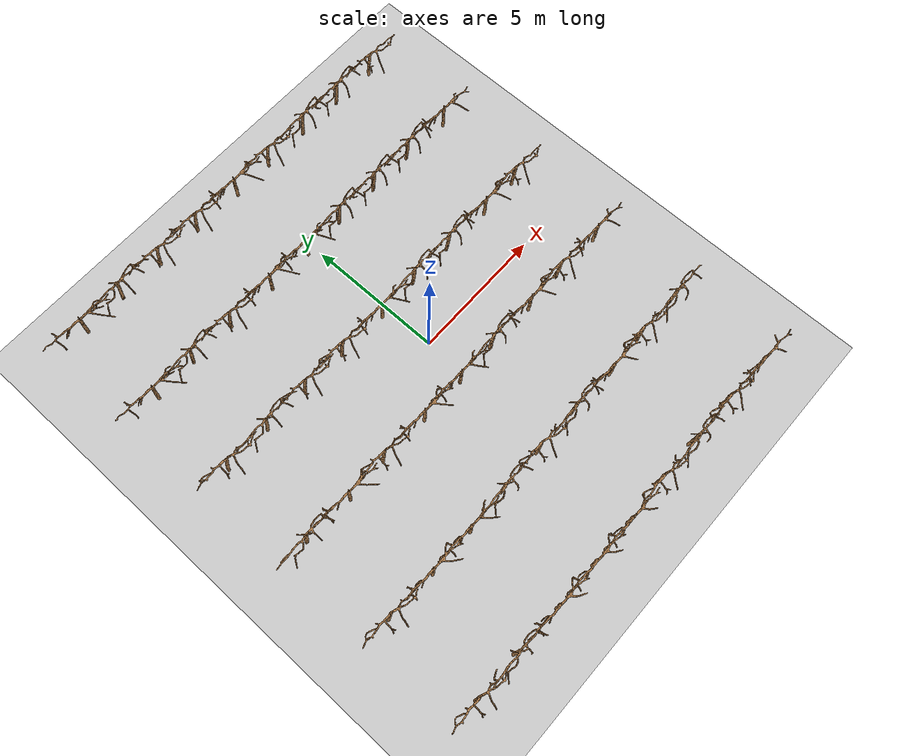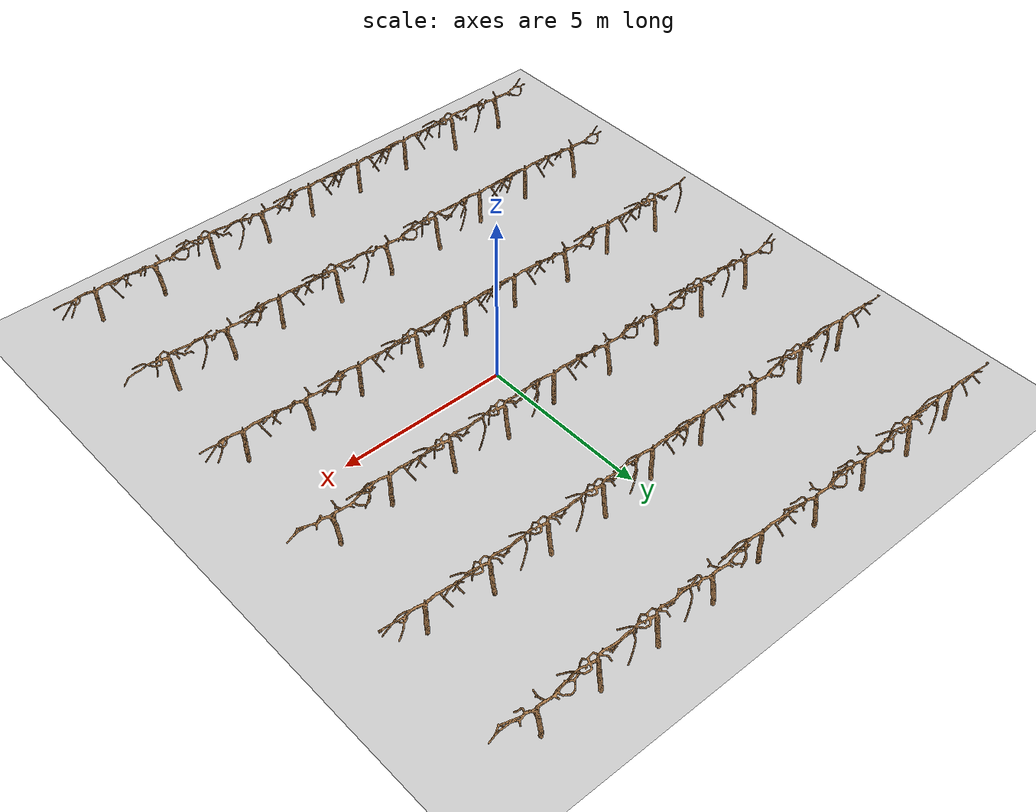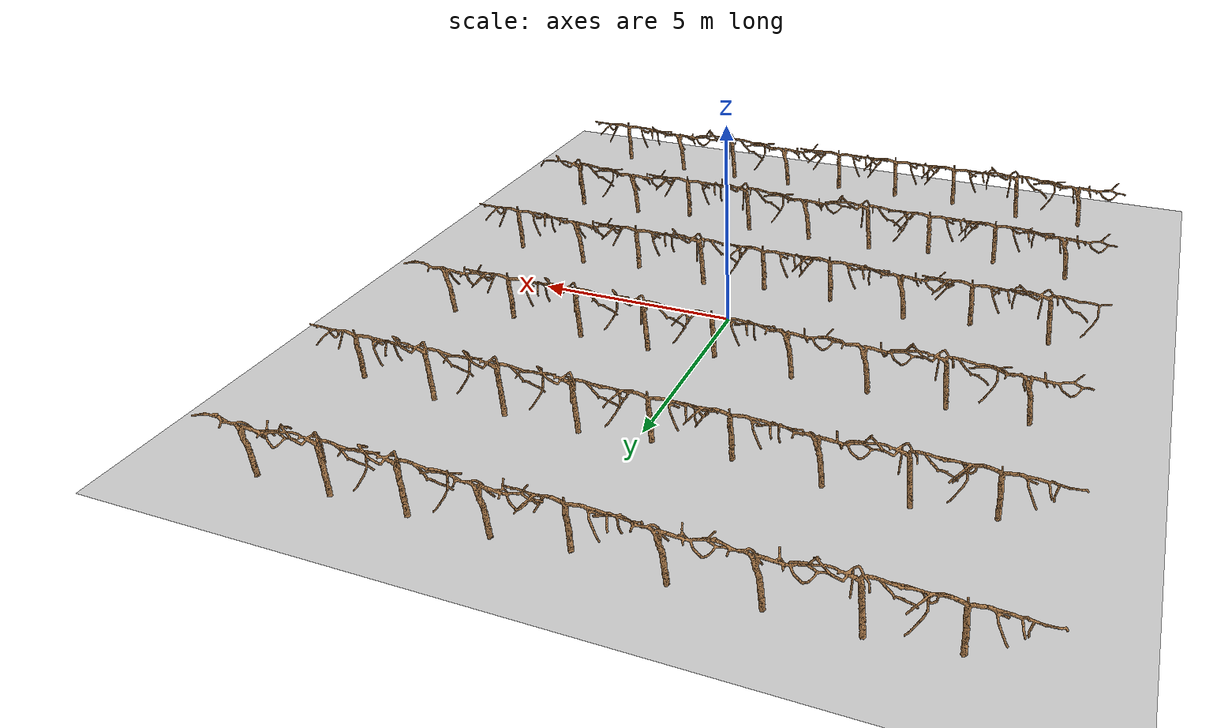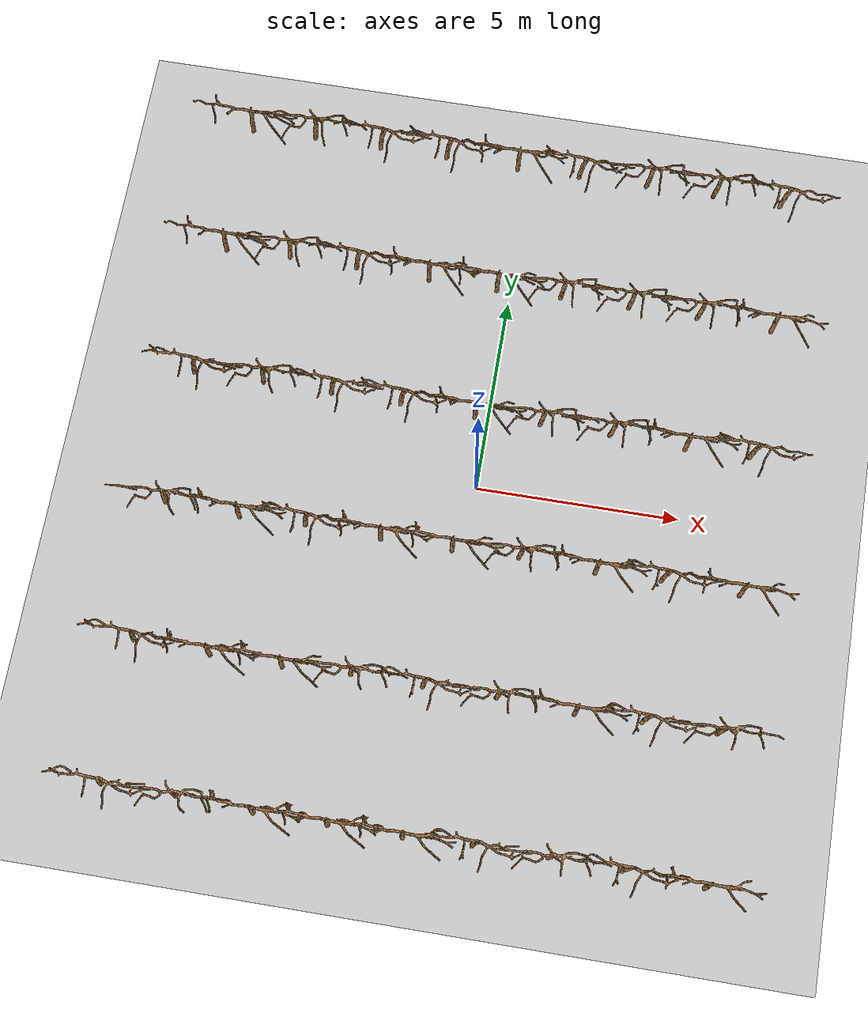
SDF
<sdf version="1.6">
 <world name="default">
  <light name="sun" type="directional">
   <pose>0 0 10 0 -0 0</pose>
   <diffuse>0.8 0.8 0.8 1</diffuse>
   <specular>0.2 0.2 0.2 1</specular>
   <attenuation>
    <range>1000</range>
    <constant>0.9</constant>
    <linear>0.01</linear>
    <quadratic>0.001</quadratic>
   </attenuation>
   <direction>-0.5 0.1 -0.9</direction>
  </light>
  <model name="ground_plane">
   <static>1</static>
   <link name="link">
    <collision name="collision">
     <geometry><plane><normal>0 0 1</normal><size>100 100</size></plane></geometry>
     <surface>
      <contact><collide_bitmask>65535</collide_bitmask></contact>
      <friction><ode><mu>100</mu><mu2>50</mu2></ode></friction>
     </surface>
    </collision>
    <visual name="visual">
     <cast_shadows>0</cast_shadows>
     <geometry><plane><normal>0 0 1</normal><size>100 100</size></plane></geometry>
     <material>
      <script><uri>file://media/materials/scripts/gazebo.material</uri><name>Gazebo/Grey</name></script>
     </material>
    </visual>
   </link>
  </model>
  <gravity>0 0 -9.8</gravity>
  <magnetic_field>6e-06 2.3e-05 -4.2e-05</magnetic_field>
  <atmosphere type="adiabatic"/>
  <physics name="default_physics" default="0" type="ode">
   <max_step_size>0.001</max_step_size>
   <real_time_factor>1</real_time_factor>
   <real_time_update_rate>1000</real_time_update_rate>
  </physics>
  <scene><ambient>0.4 0.4 0.4 1</ambient><background>0.7 0.7 0.7 1</background><shadows>1</shadows></scene>
  <audio><device>default</device></audio>
  <spherical_coordinates>
   <surface_model>EARTH_WGS84</surface_model>
   <latitude_deg>0</latitude_deg>
   <longitude_deg>0</longitude_deg>
   <elevation>0</elevation>
   <heading_deg>0</heading_deg>
  </spherical_coordinates>
  <model name="1_1">
   <static>1</static>
   <link name="link">
    <collision name="collision">
     <geometry>
      <mesh><uri>model://Vine3/meshes/mega_cloud7_processed.stl</uri><scale>1 1 1</scale></mesh>
     </geometry>
     <surface><friction><ode><mu>100</mu><mu2>50</mu2></ode></friction></surface>
    </collision>
    <visual name="visual">
     <geometry>
      <mesh><uri>model://Vine3/meshes/mega_cloud7_processed.stl</uri><scale>1 1 1</scale></mesh>
     </geometry>
     <material>
      <script><uri>file://media/materials/scripts/gazebo.material</uri><name>Gazebo/Wood</name></script>
     </material>
    </visual>
   </link>
   <pose>-7.50000 -9.75000 0.65000 0 0 1.57080</pose>
  </model>
  <model name="1_2">
   <static>1</static>
   <link name="link">
    <collision name="collision">
     <geometry>
      <mesh><uri>model://Vine1/meshes/mega_cloud3_processed.stl</uri><scale>1 1 1</scale></mesh>
     </geometry>
     <surface><friction><ode><mu>100</mu><mu2>50</mu2></ode></friction></surface>
    </collision>
    <visual name="visual">
     <geometry>
      <mesh><uri>model://Vine1/meshes/mega_cloud3_processed.stl</uri><scale>1 1 1</scale></mesh>
     </geometry>
     <material>
      <script><uri>file://media/materials/scripts/gazebo.material</uri><name>Gazebo/Wood</name></script>
     </material>
    </visual>
   </link>
   <pose>-5.74000 -9.75000 0.65000 0 0 1.57080</pose>
  </model>
  <model name="1_3">
   <static>1</static>
   <link name="link">
    <collision name="collision">
     <geometry>
      <mesh><uri>model://Vine2/meshes/mega_cloud16_processed.stl</uri><scale>1 1 1</scale></mesh>
     </geometry>
     <surface><friction><ode><mu>100</mu><mu2>50</mu2></ode></friction></surface>
    </collision>
    <visual name="visual">
     <geometry>
      <mesh><uri>model://Vine2/meshes/mega_cloud16_processed.stl</uri><scale>1 1 1</scale></mesh>
     </geometry>
     <material>
      <script><uri>file://media/materials/scripts/gazebo.material</uri><name>Gazebo/Wood</name></script>
     </material>
    </visual>
   </link>
   <pose>-3.98000 -9.75000 0.65000 0 0 1.57080</pose>
  </model>
  <model name="1_4">
   <static>1</static>
   <link name="link">
    <collision name="collision">
     <geometry>
      <mesh><uri>model://Vine2/meshes/mega_cloud16_processed.stl</uri><scale>1 1 1</scale></mesh>
     </geometry>
     <surface><friction><ode><mu>100</mu><mu2>50</mu2></ode></friction></surface>
    </collision>
    <visual name="visual">
     <geometry>
      <mesh><uri>model://Vine2/meshes/mega_cloud16_processed.stl</uri><scale>1 1 1</scale></mesh>
     </geometry>
     <material>
      <script><uri>file://media/materials/scripts/gazebo.material</uri><name>Gazebo/Wood</name></script>
     </material>
    </visual>
   </link>
   <pose>-2.22000 -9.75000 0.65000 0 0 1.57080</pose>
  </model>
  <model name="1_5">
   <static>1</static>
   <link name="link">
    <collision name="collision">
     <geometry>
      <mesh><uri>model://Vine2/meshes/mega_cloud16_processed.stl</uri><scale>1 1 1</scale></mesh>
     </geometry>
     <surface><friction><ode><mu>100</mu><mu2>50</mu2></ode></friction></surface>
    </collision>
    <visual name="visual">
     <geometry>
      <mesh><uri>model://Vine2/meshes/mega_cloud16_processed.stl</uri><scale>1 1 1</scale></mesh>
     </geometry>
     <material>
      <script><uri>file://media/materials/scripts/gazebo.material</uri><name>Gazebo/Wood</name></script>
     </material>
    </visual>
   </link>
   <pose>-0.46000 -9.75000 0.65000 0 0 1.57080</pose>
  </model>
  <model name="1_6">
   <static>1</static>
   <link name="link">
    <collision name="collision">
     <geometry>
      <mesh><uri>model://Vine3/meshes/mega_cloud7_processed.stl</uri><scale>1 1 1</scale></mesh>
     </geometry>
     <surface><friction><ode><mu>100</mu><mu2>50</mu2></ode></friction></surface>
    </collision>
    <visual name="visual">
     <geometry>
      <mesh><uri>model://Vine3/meshes/mega_cloud7_processed.stl</uri><scale>1 1 1</scale></mesh>
     </geometry>
     <material>
      <script><uri>file://media/materials/scripts/gazebo.material</uri><name>Gazebo/Wood</name></script>
     </material>
    </visual>
   </link>
   <pose>1.30000 -9.75000 0.65000 0 0 1.57080</pose>
  </model>
  <model name="1_7">
   <static>1</static>
   <link name="link">
    <collision name="collision">
     <geometry>
      <mesh><uri>model://Vine1/meshes/mega_cloud3_processed.stl</uri><scale>1 1 1</scale></mesh>
     </geometry>
     <surface><friction><ode><mu>100</mu><mu2>50</mu2></ode></friction></surface>
    </collision>
    <visual name="visual">
     <geometry>
      <mesh><uri>model://Vine1/meshes/mega_cloud3_processed.stl</uri><scale>1 1 1</scale></mesh>
     </geometry>
     <material>
      <script><uri>file://media/materials/scripts/gazebo.material</uri><name>Gazebo/Wood</name></script>
     </material>
    </visual>
   </link>
   <pose>3.06000 -9.75000 0.65000 0 0 1.57080</pose>
  </model>
  <model name="1_8">
   <static>1</static>
   <link name="link">
    <collision name="collision">
     <geometry>
      <mesh><uri>model://Vine3/meshes/mega_cloud7_processed.stl</uri><scale>1 1 1</scale></mesh>
     </geometry>
     <surface><friction><ode><mu>100</mu><mu2>50</mu2></ode></friction></surface>
    </collision>
    <visual name="visual">
     <geometry>
      <mesh><uri>model://Vine3/meshes/mega_cloud7_processed.stl</uri><scale>1 1 1</scale></mesh>
     </geometry>
     <material>
      <script><uri>file://media/materials/scripts/gazebo.material</uri><name>Gazebo/Wood</name></script>
     </material>
    </visual>
   </link>
   <pose>4.82000 -9.75000 0.65000 0 0 1.57080</pose>
  </model>
  <model name="1_9">
   <static>1</static>
   <link name="link">
    <collision name="collision">
     <geometry>
      <mesh><uri>model://Vine2/meshes/mega_cloud16_processed.stl</uri><scale>1 1 1</scale></mesh>
     </geometry>
     <surface><friction><ode><mu>100</mu><mu2>50</mu2></ode></friction></surface>
    </collision>
    <visual name="visual">
     <geometry>
      <mesh><uri>model://Vine2/meshes/mega_cloud16_processed.stl</uri><scale>1 1 1</scale></mesh>
     </geometry>
     <material>
      <script><uri>file://media/materials/scripts/gazebo.material</uri><name>Gazebo/Wood</name></script>
     </material>
    </visual>
   </link>
   <pose>6.58000 -9.75000 0.65000 0 0 1.57080</pose>
  </model>
  <model name="2_1">
   <static>1</static>
   <link name="link">
    <collision name="collision">
     <geometry>
      <mesh><uri>model://Vine3/meshes/mega_cloud7_processed.stl</uri><scale>1 1 1</scale></mesh>
     </geometry>
     <surface><friction><ode><mu>100</mu><mu2>50</mu2></ode></friction></surface>
    </collision>
    <visual name="visual">
     <geometry>
      <mesh><uri>model://Vine3/meshes/mega_cloud7_processed.stl</uri><scale>1 1 1</scale></mesh>
     </geometry>
     <material>
      <script><uri>file://media/materials/scripts/gazebo.material</uri><name>Gazebo/Wood</name></script>
     </material>
    </visual>
   </link>
   <pose>-7.50000 -6.25000 0.65000 0 0 1.57080</pose>
  </model>
  <model name="2_2">
   <static>1</static>
   <link name="link">
    <collision name="collision">
     <geometry>
      <mesh><uri>model://Vine2/meshes/mega_cloud16_processed.stl</uri><scale>1 1 1</scale></mesh>
     </geometry>
     <surface><friction><ode><mu>100</mu><mu2>50</mu2></ode></friction></surface>
    </collision>
    <visual name="visual">
     <geometry>
      <mesh><uri>model://Vine2/meshes/mega_cloud16_processed.stl</uri><scale>1 1 1</scale></mesh>
     </geometry>
     <material>
      <script><uri>file://media/materials/scripts/gazebo.material</uri><name>Gazebo/Wood</name></script>
     </material>
    </visual>
   </link>
   <pose>-5.74000 -6.25000 0.65000 0 0 1.57080</pose>
  </model>
  <model name="2_3">
   <static>1</static>
   <link name="link">
    <collision name="collision">
     <geometry>
      <mesh><uri>model://Vine2/meshes/mega_cloud16_processed.stl</uri><scale>1 1 1</scale></mesh>
     </geometry>
     <surface><friction><ode><mu>100</mu><mu2>50</mu2></ode></friction></surface>
    </collision>
    <visual name="visual">
     <geometry>
      <mesh><uri>model://Vine2/meshes/mega_cloud16_processed.stl</uri><scale>1 1 1</scale></mesh>
     </geometry>
     <material>
      <script><uri>file://media/materials/scripts/gazebo.material</uri><name>Gazebo/Wood</name></script>
     </material>
    </visual>
   </link>
   <pose>-3.98000 -6.25000 0.65000 0 0 1.57080</pose>
  </model>
  <model name="2_4">
   <static>1</static>
   <link name="link">
    <collision name="collision">
     <geometry>
      <mesh><uri>model://Vine1/meshes/mega_cloud3_processed.stl</uri><scale>1 1 1</scale></mesh>
     </geometry>
     <surface><friction><ode><mu>100</mu><mu2>50</mu2></ode></friction></surface>
    </collision>
    <visual name="visual">
     <geometry>
      <mesh><uri>model://Vine1/meshes/mega_cloud3_processed.stl</uri><scale>1 1 1</scale></mesh>
     </geometry>
     <material>
      <script><uri>file://media/materials/scripts/gazebo.material</uri><name>Gazebo/Wood</name></script>
     </material>
    </visual>
   </link>
   <pose>-2.22000 -6.25000 0.65000 0 0 1.57080</pose>
  </model>
  <model name="2_5">
   <static>1</static>
   <link name="link">
    <collision name="collision">
     <geometry>
      <mesh><uri>model://Vine3/meshes/mega_cloud7_processed.stl</uri><scale>1 1 1</scale></mesh>
     </geometry>
     <surface><friction><ode><mu>100</mu><mu2>50</mu2></ode></friction></surface>
    </collision>
    <visual name="visual">
     <geometry>
      <mesh><uri>model://Vine3/meshes/mega_cloud7_processed.stl</uri><scale>1 1 1</scale></mesh>
     </geometry>
     <material>
      <script><uri>file://media/materials/scripts/gazebo.material</uri><name>Gazebo/Wood</name></script>
     </material>
    </visual>
   </link>
   <pose>-0.46000 -6.25000 0.65000 0 0 1.57080</pose>
  </model>
  <model name="2_6">
   <static>1</static>
   <link name="link">
    <collision name="collision">
     <geometry>
      <mesh><uri>model://Vine1/meshes/mega_cloud3_processed.stl</uri><scale>1 1 1</scale></mesh>
     </geometry>
     <surface><friction><ode><mu>100</mu><mu2>50</mu2></ode></friction></surface>
    </collision>
    <visual name="visual">
     <geometry>
      <mesh><uri>model://Vine1/meshes/mega_cloud3_processed.stl</uri><scale>1 1 1</scale></mesh>
     </geometry>
     <material>
      <script><uri>file://media/materials/scripts/gazebo.material</uri><name>Gazebo/Wood</name></script>
     </material>
    </visual>
   </link>
   <pose>1.30000 -6.25000 0.65000 0 0 1.57080</pose>
  </model>
  <model name="2_7">
   <static>1</static>
   <link name="link">
    <collision name="collision">
     <geometry>
      <mesh><uri>model://Vine2/meshes/mega_cloud16_processed.stl</uri><scale>1 1 1</scale></mesh>
     </geometry>
     <surface><friction><ode><mu>100</mu><mu2>50</mu2></ode></friction></surface>
    </collision>
    <visual name="visual">
     <geometry>
      <mesh><uri>model://Vine2/meshes/mega_cloud16_processed.stl</uri><scale>1 1 1</scale></mesh>
     </geometry>
     <material>
      <script><uri>file://media/materials/scripts/gazebo.material</uri><name>Gazebo/Wood</name></script>
     </material>
    </visual>
   </link>
   <pose>3.06000 -6.25000 0.65000 0 0 1.57080</pose>
  </model>
  <model name="2_8">
   <static>1</static>
   <link name="link">
    <collision name="collision">
     <geometry>
      <mesh><uri>model://Vine3/meshes/mega_cloud7_processed.stl</uri><scale>1 1 1</scale></mesh>
     </geometry>
     <surface><friction><ode><mu>100</mu><mu2>50</mu2></ode></friction></surface>
    </collision>
    <visual name="visual">
     <geometry>
      <mesh><uri>model://Vine3/meshes/mega_cloud7_processed.stl</uri><scale>1 1 1</scale></mesh>
     </geometry>
     <material>
      <script><uri>file://media/materials/scripts/gazebo.material</uri><name>Gazebo/Wood</name></script>
     </material>
    </visual>
   </link>
   <pose>4.82000 -6.25000 0.65000 0 0 1.57080</pose>
  </model>
  <model name="2_9">
   <static>1</static>
   <link name="link">
    <collision name="collision">
     <geometry>
      <mesh><uri>model://Vine1/meshes/mega_cloud3_processed.stl</uri><scale>1 1 1</scale></mesh>
     </geometry>
     <surface><friction><ode><mu>100</mu><mu2>50</mu2></ode></friction></surface>
    </collision>
    <visual name="visual">
     <geometry>
      <mesh><uri>model://Vine1/meshes/mega_cloud3_processed.stl</uri><scale>1 1 1</scale></mesh>
     </geometry>
     <material>
      <script><uri>file://media/materials/scripts/gazebo.material</uri><name>Gazebo/Wood</name></script>
     </material>
    </visual>
   </link>
   <pose>6.58000 -6.25000 0.65000 0 0 1.57080</pose>
  </model>
  <model name="3_1">
   <static>1</static>
   <link name="link">
    <collision name="collision">
     <geometry>
      <mesh><uri>model://Vine1/meshes/mega_cloud3_processed.stl</uri><scale>1 1 1</scale></mesh>
     </geometry>
     <surface><friction><ode><mu>100</mu><mu2>50</mu2></ode></friction></surface>
    </collision>
    <visual name="visual">
     <geometry>
      <mesh><uri>model://Vine1/meshes/mega_cloud3_processed.stl</uri><scale>1 1 1</scale></mesh>
     </geometry>
     <material>
      <script><uri>file://media/materials/scripts/gazebo.material</uri><name>Gazebo/Wood</name></script>
     </material>
    </visual>
   </link>
   <pose>-7.50000 -2.75000 0.65000 0 0 1.57080</pose>
  </model>
  <model name="3_2">
   <static>1</static>
   <link name="link">
    <collision name="collision">
     <geometry>
      <mesh><uri>model://Vine2/meshes/mega_cloud16_processed.stl</uri><scale>1 1 1</scale></mesh>
     </geometry>
     <surface><friction><ode><mu>100</mu><mu2>50</mu2></ode></friction></surface>
    </collision>
    <visual name="visual">
     <geometry>
      <mesh><uri>model://Vine2/meshes/mega_cloud16_processed.stl</uri><scale>1 1 1</scale></mesh>
     </geometry>
     <material>
      <script><uri>file://media/materials/scripts/gazebo.material</uri><name>Gazebo/Wood</name></script>
     </material>
    </visual>
   </link>
   <pose>-5.74000 -2.75000 0.65000 0 0 1.57080</pose>
  </model>
  <model name="3_3">
   <static>1</static>
   <link name="link">
    <collision name="collision">
     <geometry>
      <mesh><uri>model://Vine3/meshes/mega_cloud7_processed.stl</uri><scale>1 1 1</scale></mesh>
     </geometry>
     <surface><friction><ode><mu>100</mu><mu2>50</mu2></ode></friction></surface>
    </collision>
    <visual name="visual">
     <geometry>
      <mesh><uri>model://Vine3/meshes/mega_cloud7_processed.stl</uri><scale>1 1 1</scale></mesh>
     </geometry>
     <material>
      <script><uri>file://media/materials/scripts/gazebo.material</uri><name>Gazebo/Wood</name></script>
     </material>
    </visual>
   </link>
   <pose>-3.98000 -2.75000 0.65000 0 0 1.57080</pose>
  </model>
  <model name="3_4">
   <static>1</static>
   <link name="link">
    <collision name="collision">
     <geometry>
      <mesh><uri>model://Vine2/meshes/mega_cloud16_processed.stl</uri><scale>1 1 1</scale></mesh>
     </geometry>
     <surface><friction><ode><mu>100</mu><mu2>50</mu2></ode></friction></surface>
    </collision>
    <visual name="visual">
     <geometry>
      <mesh><uri>model://Vine2/meshes/mega_cloud16_processed.stl</uri><scale>1 1 1</scale></mesh>
     </geometry>
     <material>
      <script><uri>file://media/materials/scripts/gazebo.material</uri><name>Gazebo/Wood</name></script>
     </material>
    </visual>
   </link>
   <pose>-2.22000 -2.75000 0.65000 0 0 1.57080</pose>
  </model>
  <model name="3_5">
   <static>1</static>
   <link name="link">
    <collision name="collision">
     <geometry>
      <mesh><uri>model://Vine2/meshes/mega_cloud16_processed.stl</uri><scale>1 1 1</scale></mesh>
     </geometry>
     <surface><friction><ode><mu>100</mu><mu2>50</mu2></ode></friction></surface>
    </collision>
    <visual name="visual">
     <geometry>
      <mesh><uri>model://Vine2/meshes/mega_cloud16_processed.stl</uri><scale>1 1 1</scale></mesh>
     </geometry>
     <material>
      <script><uri>file://media/materials/scripts/gazebo.material</uri><name>Gazebo/Wood</name></script>
     </material>
    </visual>
   </link>
   <pose>-0.46000 -2.75000 0.65000 0 0 1.57080</pose>
  </model>
  <model name="3_6">
   <static>1</static>
   <link name="link">
    <collision name="collision">
     <geometry>
      <mesh><uri>model://Vine1/meshes/mega_cloud3_processed.stl</uri><scale>1 1 1</scale></mesh>
     </geometry>
     <surface><friction><ode><mu>100</mu><mu2>50</mu2></ode></friction></surface>
    </collision>
    <visual name="visual">
     <geometry>
      <mesh><uri>model://Vine1/meshes/mega_cloud3_processed.stl</uri><scale>1 1 1</scale></mesh>
     </geometry>
     <material>
      <script><uri>file://media/materials/scripts/gazebo.material</uri><name>Gazebo/Wood</name></script>
     </material>
    </visual>
   </link>
   <pose>1.30000 -2.75000 0.65000 0 0 1.57080</pose>
  </model>
  <model name="3_7">
   <static>1</static>
   <link name="link">
    <collision name="collision">
     <geometry>
      <mesh><uri>model://Vine2/meshes/mega_cloud16_processed.stl</uri><scale>1 1 1</scale></mesh>
     </geometry>
     <surface><friction><ode><mu>100</mu><mu2>50</mu2></ode></friction></surface>
    </collision>
    <visual name="visual">
     <geometry>
      <mesh><uri>model://Vine2/meshes/mega_cloud16_processed.stl</uri><scale>1 1 1</scale></mesh>
     </geometry>
     <material>
      <script><uri>file://media/materials/scripts/gazebo.material</uri><name>Gazebo/Wood</name></script>
     </material>
    </visual>
   </link>
   <pose>3.06000 -2.75000 0.65000 0 0 1.57080</pose>
  </model>
  <model name="3_8">
   <static>1</static>
   <link name="link">
    <collision name="collision">
     <geometry>
      <mesh><uri>model://Vine3/meshes/mega_cloud7_processed.stl</uri><scale>1 1 1</scale></mesh>
     </geometry>
     <surface><friction><ode><mu>100</mu><mu2>50</mu2></ode></friction></surface>
    </collision>
    <visual name="visual">
     <geometry>
      <mesh><uri>model://Vine3/meshes/mega_cloud7_processed.stl</uri><scale>1 1 1</scale></mesh>
     </geometry>
     <material>
      <script><uri>file://media/materials/scripts/gazebo.material</uri><name>Gazebo/Wood</name></script>
     </material>
    </visual>
   </link>
   <pose>4.82000 -2.75000 0.65000 0 0 1.57080</pose>
  </model>
  <model name="3_9">
   <static>1</static>
   <link name="link">
    <collision name="collision">
     <geometry>
      <mesh><uri>model://Vine2/meshes/mega_cloud16_processed.stl</uri><scale>1 1 1</scale></mesh>
     </geometry>
     <surface><friction><ode><mu>100</mu><mu2>50</mu2></ode></friction></surface>
    </collision>
    <visual name="visual">
     <geometry>
      <mesh><uri>model://Vine2/meshes/mega_cloud16_processed.stl</uri><scale>1 1 1</scale></mesh>
     </geometry>
     <material>
      <script><uri>file://media/materials/scripts/gazebo.material</uri><name>Gazebo/Wood</name></script>
     </material>
    </visual>
   </link>
   <pose>6.58000 -2.75000 0.65000 0 0 1.57080</pose>
  </model>
  <model name="4_1">
   <static>1</static>
   <link name="link">
    <collision name="collision">
     <geometry>
      <mesh><uri>model://Vine3/meshes/mega_cloud7_processed.stl</uri><scale>1 1 1</scale></mesh>
     </geometry>
     <surface><friction><ode><mu>100</mu><mu2>50</mu2></ode></friction></surface>
    </collision>
    <visual name="visual">
     <geometry>
      <mesh><uri>model://Vine3/meshes/mega_cloud7_processed.stl</uri><scale>1 1 1</scale></mesh>
     </geometry>
     <material>
      <script><uri>file://media/materials/scripts/gazebo.material</uri><name>Gazebo/Wood</name></script>
     </material>
    </visual>
   </link>
   <pose>-7.50000 0.75000 0.65000 0 0 1.57080</pose>
  </model>
  <model name="4_2">
   <static>1</static>
   <link name="link">
    <collision name="collision">
     <geometry>
      <mesh><uri>model://Vine1/meshes/mega_cloud3_processed.stl</uri><scale>1 1 1</scale></mesh>
     </geometry>
     <surface><friction><ode><mu>100</mu><mu2>50</mu2></ode></friction></surface>
    </collision>
    <visual name="visual">
     <geometry>
      <mesh><uri>model://Vine1/meshes/mega_cloud3_processed.stl</uri><scale>1 1 1</scale></mesh>
     </geometry>
     <material>
      <script><uri>file://media/materials/scripts/gazebo.material</uri><name>Gazebo/Wood</name></script>
     </material>
    </visual>
   </link>
   <pose>-5.74000 0.75000 0.65000 0 0 1.57080</pose>
  </model>
  <model name="4_3">
   <static>1</static>
   <link name="link">
    <collision name="collision">
     <geometry>
      <mesh><uri>model://Vine3/meshes/mega_cloud7_processed.stl</uri><scale>1 1 1</scale></mesh>
     </geometry>
     <surface><friction><ode><mu>100</mu><mu2>50</mu2></ode></friction></surface>
    </collision>
    <visual name="visual">
     <geometry>
      <mesh><uri>model://Vine3/meshes/mega_cloud7_processed.stl</uri><scale>1 1 1</scale></mesh>
     </geometry>
     <material>
      <script><uri>file://media/materials/scripts/gazebo.material</uri><name>Gazebo/Wood</name></script>
     </material>
    </visual>
   </link>
   <pose>-3.98000 0.75000 0.65000 0 0 1.57080</pose>
  </model>
  <model name="4_4">
   <static>1</static>
   <link name="link">
    <collision name="collision">
     <geometry>
      <mesh><uri>model://Vine3/meshes/mega_cloud7_processed.stl</uri><scale>1 1 1</scale></mesh>
     </geometry>
     <surface><friction><ode><mu>100</mu><mu2>50</mu2></ode></friction></surface>
    </collision>
    <visual name="visual">
     <geometry>
      <mesh><uri>model://Vine3/meshes/mega_cloud7_processed.stl</uri><scale>1 1 1</scale></mesh>
     </geometry>
     <material>
      <script><uri>file://media/materials/scripts/gazebo.material</uri><name>Gazebo/Wood</name></script>
     </material>
    </visual>
   </link>
   <pose>-2.22000 0.75000 0.65000 0 0 1.57080</pose>
  </model>
  <model name="4_5">
   <static>1</static>
   <link name="link">
    <collision name="collision">
     <geometry>
      <mesh><uri>model://Vine2/meshes/mega_cloud16_processed.stl</uri><scale>1 1 1</scale></mesh>
     </geometry>
     <surface><friction><ode><mu>100</mu><mu2>50</mu2></ode></friction></surface>
    </collision>
    <visual name="visual">
     <geometry>
      <mesh><uri>model://Vine2/meshes/mega_cloud16_processed.stl</uri><scale>1 1 1</scale></mesh>
     </geometry>
     <material>
      <script><uri>file://media/materials/scripts/gazebo.material</uri><name>Gazebo/Wood</name></script>
     </material>
    </visual>
   </link>
   <pose>-0.46000 0.75000 0.65000 0 0 1.57080</pose>
  </model>
  <model name="4_6">
   <static>1</static>
   <link name="link">
    <collision name="collision">
     <geometry>
      <mesh><uri>model://Vine1/meshes/mega_cloud3_processed.stl</uri><scale>1 1 1</scale></mesh>
     </geometry>
     <surface><friction><ode><mu>100</mu><mu2>50</mu2></ode></friction></surface>
    </collision>
    <visual name="visual">
     <geometry>
      <mesh><uri>model://Vine1/meshes/mega_cloud3_processed.stl</uri><scale>1 1 1</scale></mesh>
     </geometry>
     <material>
      <script><uri>file://media/materials/scripts/gazebo.material</uri><name>Gazebo/Wood</name></script>
     </material>
    </visual>
   </link>
   <pose>1.30000 0.75000 0.65000 0 0 1.57080</pose>
  </model>
  <model name="4_7">
   <static>1</static>
   <link name="link">
    <collision name="collision">
     <geometry>
      <mesh><uri>model://Vine1/meshes/mega_cloud3_processed.stl</uri><scale>1 1 1</scale></mesh>
     </geometry>
     <surface><friction><ode><mu>100</mu><mu2>50</mu2></ode></friction></surface>
    </collision>
    <visual name="visual">
     <geometry>
      <mesh><uri>model://Vine1/meshes/mega_cloud3_processed.stl</uri><scale>1 1 1</scale></mesh>
     </geometry>
     <material>
      <script><uri>file://media/materials/scripts/gazebo.material</uri><name>Gazebo/Wood</name></script>
     </material>
    </visual>
   </link>
   <pose>3.06000 0.75000 0.65000 0 0 1.57080</pose>
  </model>
  <model name="4_8">
   <static>1</static>
   <link name="link">
    <collision name="collision">
     <geometry>
      <mesh><uri>model://Vine2/meshes/mega_cloud16_processed.stl</uri><scale>1 1 1</scale></mesh>
     </geometry>
     <surface><friction><ode><mu>100</mu><mu2>50</mu2></ode></friction></surface>
    </collision>
    <visual name="visual">
     <geometry>
      <mesh><uri>model://Vine2/meshes/mega_cloud16_processed.stl</uri><scale>1 1 1</scale></mesh>
     </geometry>
     <material>
      <script><uri>file://media/materials/scripts/gazebo.material</uri><name>Gazebo/Wood</name></script>
     </material>
    </visual>
   </link>
   <pose>4.82000 0.75000 0.65000 0 0 1.57080</pose>
  </model>
  <model name="4_9">
   <static>1</static>
   <link name="link">
    <collision name="collision">
     <geometry>
      <mesh><uri>model://Vine3/meshes/mega_cloud7_processed.stl</uri><scale>1 1 1</scale></mesh>
     </geometry>
     <surface><friction><ode><mu>100</mu><mu2>50</mu2></ode></friction></surface>
    </collision>
    <visual name="visual">
     <geometry>
      <mesh><uri>model://Vine3/meshes/mega_cloud7_processed.stl</uri><scale>1 1 1</scale></mesh>
     </geometry>
     <material>
      <script><uri>file://media/materials/scripts/gazebo.material</uri><name>Gazebo/Wood</name></script>
     </material>
    </visual>
   </link>
   <pose>6.58000 0.75000 0.65000 0 0 1.57080</pose>
  </model>
  <model name="5_1">
   <static>1</static>
   <link name="link">
    <collision name="collision">
     <geometry>
      <mesh><uri>model://Vine2/meshes/mega_cloud16_processed.stl</uri><scale>1 1 1</scale></mesh>
     </geometry>
     <surface><friction><ode><mu>100</mu><mu2>50</mu2></ode></friction></surface>
    </collision>
    <visual name="visual">
     <geometry>
      <mesh><uri>model://Vine2/meshes/mega_cloud16_processed.stl</uri><scale>1 1 1</scale></mesh>
     </geometry>
     <material>
      <script><uri>file://media/materials/scripts/gazebo.material</uri><name>Gazebo/Wood</name></script>
     </material>
    </visual>
   </link>
   <pose>-7.50000 4.25000 0.65000 0 0 1.57080</pose>
  </model>
  <model name="5_2">
   <static>1</static>
   <link name="link">
    <collision name="collision">
     <geometry>
      <mesh><uri>model://Vine1/meshes/mega_cloud3_processed.stl</uri><scale>1 1 1</scale></mesh>
     </geometry>
     <surface><friction><ode><mu>100</mu><mu2>50</mu2></ode></friction></surface>
    </collision>
    <visual name="visual">
     <geometry>
      <mesh><uri>model://Vine1/meshes/mega_cloud3_processed.stl</uri><scale>1 1 1</scale></mesh>
     </geometry>
     <material>
      <script><uri>file://media/materials/scripts/gazebo.material</uri><name>Gazebo/Wood</name></script>
     </material>
    </visual>
   </link>
   <pose>-5.74000 4.25000 0.65000 0 0 1.57080</pose>
  </model>
  <model name="5_3">
   <static>1</static>
   <link name="link">
    <collision name="collision">
     <geometry>
      <mesh><uri>model://Vine3/meshes/mega_cloud7_processed.stl</uri><scale>1 1 1</scale></mesh>
     </geometry>
     <surface><friction><ode><mu>100</mu><mu2>50</mu2></ode></friction></surface>
    </collision>
    <visual name="visual">
     <geometry>
      <mesh><uri>model://Vine3/meshes/mega_cloud7_processed.stl</uri><scale>1 1 1</scale></mesh>
     </geometry>
     <material>
      <script><uri>file://media/materials/scripts/gazebo.material</uri><name>Gazebo/Wood</name></script>
     </material>
    </visual>
   </link>
   <pose>-3.98000 4.25000 0.65000 0 0 1.57080</pose>
  </model>
  <model name="5_4">
   <static>1</static>
   <link name="link">
    <collision name="collision">
     <geometry>
      <mesh><uri>model://Vine2/meshes/mega_cloud16_processed.stl</uri><scale>1 1 1</scale></mesh>
     </geometry>
     <surface><friction><ode><mu>100</mu><mu2>50</mu2></ode></friction></surface>
    </collision>
    <visual name="visual">
     <geometry>
      <mesh><uri>model://Vine2/meshes/mega_cloud16_processed.stl</uri><scale>1 1 1</scale></mesh>
     </geometry>
     <material>
      <script><uri>file://media/materials/scripts/gazebo.material</uri><name>Gazebo/Wood</name></script>
     </material>
    </visual>
   </link>
   <pose>-2.22000 4.25000 0.65000 0 0 1.57080</pose>
  </model>
  <model name="5_5">
   <static>1</static>
   <link name="link">
    <collision name="collision">
     <geometry>
      <mesh><uri>model://Vine2/meshes/mega_cloud16_processed.stl</uri><scale>1 1 1</scale></mesh>
     </geometry>
     <surface><friction><ode><mu>100</mu><mu2>50</mu2></ode></friction></surface>
    </collision>
    <visual name="visual">
     <geometry>
      <mesh><uri>model://Vine2/meshes/mega_cloud16_processed.stl</uri><scale>1 1 1</scale></mesh>
     </geometry>
     <material>
      <script><uri>file://media/materials/scripts/gazebo.material</uri><name>Gazebo/Wood</name></script>
     </material>
    </visual>
   </link>
   <pose>-0.46000 4.25000 0.65000 0 0 1.57080</pose>
  </model>
  <model name="5_6">
   <static>1</static>
   <link name="link">
    <collision name="collision">
     <geometry>
      <mesh><uri>model://Vine1/meshes/mega_cloud3_processed.stl</uri><scale>1 1 1</scale></mesh>
     </geometry>
     <surface><friction><ode><mu>100</mu><mu2>50</mu2></ode></friction></surface>
    </collision>
    <visual name="visual">
     <geometry>
      <mesh><uri>model://Vine1/meshes/mega_cloud3_processed.stl</uri><scale>1 1 1</scale></mesh>
     </geometry>
     <material>
      <script><uri>file://media/materials/scripts/gazebo.material</uri><name>Gazebo/Wood</name></script>
     </material>
    </visual>
   </link>
   <pose>1.30000 4.25000 0.65000 0 0 1.57080</pose>
  </model>
  <model name="5_7">
   <static>1</static>
   <link name="link">
    <collision name="collision">
     <geometry>
      <mesh><uri>model://Vine1/meshes/mega_cloud3_processed.stl</uri><scale>1 1 1</scale></mesh>
     </geometry>
     <surface><friction><ode><mu>100</mu><mu2>50</mu2></ode></friction></surface>
    </collision>
    <visual name="visual">
     <geometry>
      <mesh><uri>model://Vine1/meshes/mega_cloud3_processed.stl</uri><scale>1 1 1</scale></mesh>
     </geometry>
     <material>
      <script><uri>file://media/materials/scripts/gazebo.material</uri><name>Gazebo/Wood</name></script>
     </material>
    </visual>
   </link>
   <pose>3.06000 4.25000 0.65000 0 0 1.57080</pose>
  </model>
  <model name="5_8">
   <static>1</static>
   <link name="link">
    <collision name="collision">
     <geometry>
      <mesh><uri>model://Vine1/meshes/mega_cloud3_processed.stl</uri><scale>1 1 1</scale></mesh>
     </geometry>
     <surface><friction><ode><mu>100</mu><mu2>50</mu2></ode></friction></surface>
    </collision>
    <visual name="visual">
     <geometry>
      <mesh><uri>model://Vine1/meshes/mega_cloud3_processed.stl</uri><scale>1 1 1</scale></mesh>
     </geometry>
     <material>
      <script><uri>file://media/materials/scripts/gazebo.material</uri><name>Gazebo/Wood</name></script>
     </material>
    </visual>
   </link>
   <pose>4.82000 4.25000 0.65000 0 0 1.57080</pose>
  </model>
  <model name="5_9">
   <static>1</static>
   <link name="link">
    <collision name="collision">
     <geometry>
      <mesh><uri>model://Vine2/meshes/mega_cloud16_processed.stl</uri><scale>1 1 1</scale></mesh>
     </geometry>
     <surface><friction><ode><mu>100</mu><mu2>50</mu2></ode></friction></surface>
    </collision>
    <visual name="visual">
     <geometry>
      <mesh><uri>model://Vine2/meshes/mega_cloud16_processed.stl</uri><scale>1 1 1</scale></mesh>
     </geometry>
     <material>
      <script><uri>file://media/materials/scripts/gazebo.material</uri><name>Gazebo/Wood</name></script>
     </material>
    </visual>
   </link>
   <pose>6.58000 4.25000 0.65000 0 0 1.57080</pose>
  </model>
  <model name="6_1">
   <static>1</static>
   <link name="link">
    <collision name="collision">
     <geometry>
      <mesh><uri>model://Vine2/meshes/mega_cloud16_processed.stl</uri><scale>1 1 1</scale></mesh>
     </geometry>
     <surface><friction><ode><mu>100</mu><mu2>50</mu2></ode></friction></surface>
    </collision>
    <visual name="visual">
     <geometry>
      <mesh><uri>model://Vine2/meshes/mega_cloud16_processed.stl</uri><scale>1 1 1</scale></mesh>
     </geometry>
     <material>
      <script><uri>file://media/materials/scripts/gazebo.material</uri><name>Gazebo/Wood</name></script>
     </material>
    </visual>
   </link>
   <pose>-7.50000 7.75000 0.65000 0 0 1.57080</pose>
  </model>
  <model name="6_2">
   <static>1</static>
   <link name="link">
    <collision name="collision">
     <geometry>
      <mesh><uri>model://Vine1/meshes/mega_cloud3_processed.stl</uri><scale>1 1 1</scale></mesh>
     </geometry>
     <surface><friction><ode><mu>100</mu><mu2>50</mu2></ode></friction></surface>
    </collision>
    <visual name="visual">
     <geometry>
      <mesh><uri>model://Vine1/meshes/mega_cloud3_processed.stl</uri><scale>1 1 1</scale></mesh>
     </geometry>
     <material>
      <script><uri>file://media/materials/scripts/gazebo.material</uri><name>Gazebo/Wood</name></script>
     </material>
    </visual>
   </link>
   <pose>-5.74000 7.75000 0.65000 0 0 1.57080</pose>
  </model>
  <model name="6_3">
   <static>1</static>
   <link name="link">
    <collision name="collision">
     <geometry>
      <mesh><uri>model://Vine3/meshes/mega_cloud7_processed.stl</uri><scale>1 1 1</scale></mesh>
     </geometry>
     <surface><friction><ode><mu>100</mu><mu2>50</mu2></ode></friction></surface>
    </collision>
    <visual name="visual">
     <geometry>
      <mesh><uri>model://Vine3/meshes/mega_cloud7_processed.stl</uri><scale>1 1 1</scale></mesh>
     </geometry>
     <material>
      <script><uri>file://media/materials/scripts/gazebo.material</uri><name>Gazebo/Wood</name></script>
     </material>
    </visual>
   </link>
   <pose>-3.98000 7.75000 0.65000 0 0 1.57080</pose>
  </model>
  <model name="6_4">
   <static>1</static>
   <link name="link">
    <collision name="collision">
     <geometry>
      <mesh><uri>model://Vine3/meshes/mega_cloud7_processed.stl</uri><scale>1 1 1</scale></mesh>
     </geometry>
     <surface><friction><ode><mu>100</mu><mu2>50</mu2></ode></friction></surface>
    </collision>
    <visual name="visual">
     <geometry>
      <mesh><uri>model://Vine3/meshes/mega_cloud7_processed.stl</uri><scale>1 1 1</scale></mesh>
     </geometry>
     <material>
      <script><uri>file://media/materials/scripts/gazebo.material</uri><name>Gazebo/Wood</name></script>
     </material>
    </visual>
   </link>
   <pose>-2.22000 7.75000 0.65000 0 0 1.57080</pose>
  </model>
  <model name="6_5">
   <static>1</static>
   <link name="link">
    <collision name="collision">
     <geometry>
      <mesh><uri>model://Vine2/meshes/mega_cloud16_processed.stl</uri><scale>1 1 1</scale></mesh>
     </geometry>
     <surface><friction><ode><mu>100</mu><mu2>50</mu2></ode></friction></surface>
    </collision>
    <visual name="visual">
     <geometry>
      <mesh><uri>model://Vine2/meshes/mega_cloud16_processed.stl</uri><scale>1 1 1</scale></mesh>
     </geometry>
     <material>
      <script><uri>file://media/materials/scripts/gazebo.material</uri><name>Gazebo/Wood</name></script>
     </material>
    </visual>
   </link>
   <pose>-0.46000 7.75000 0.65000 0 0 1.57080</pose>
  </model>
  <model name="6_6">
   <static>1</static>
   <link name="link">
    <collision name="collision">
     <geometry>
      <mesh><uri>model://Vine3/meshes/mega_cloud7_processed.stl</uri><scale>1 1 1</scale></mesh>
     </geometry>
     <surface><friction><ode><mu>100</mu><mu2>50</mu2></ode></friction></surface>
    </collision>
    <visual name="visual">
     <geometry>
      <mesh><uri>model://Vine3/meshes/mega_cloud7_processed.stl</uri><scale>1 1 1</scale></mesh>
     </geometry>
     <material>
      <script><uri>file://media/materials/scripts/gazebo.material</uri><name>Gazebo/Wood</name></script>
     </material>
    </visual>
   </link>
   <pose>1.30000 7.75000 0.65000 0 0 1.57080</pose>
  </model>
  <model name="6_7">
   <static>1</static>
   <link name="link">
    <collision name="collision">
     <geometry>
      <mesh><uri>model://Vine1/meshes/mega_cloud3_processed.stl</uri><scale>1 1 1</scale></mesh>
     </geometry>
     <surface><friction><ode><mu>100</mu><mu2>50</mu2></ode></friction></surface>
    </collision>
    <visual name="visual">
     <geometry>
      <mesh><uri>model://Vine1/meshes/mega_cloud3_processed.stl</uri><scale>1 1 1</scale></mesh>
     </geometry>
     <material>
      <script><uri>file://media/materials/scripts/gazebo.material</uri><name>Gazebo/Wood</name></script>
     </material>
    </visual>
   </link>
   <pose>3.06000 7.75000 0.65000 0 0 1.57080</pose>
  </model>
  <model name="6_8">
   <static>1</static>
   <link name="link">
    <collision name="collision">
     <geometry>
      <mesh><uri>model://Vine1/meshes/mega_cloud3_processed.stl</uri><scale>1 1 1</scale></mesh>
     </geometry>
     <surface><friction><ode><mu>100</mu><mu2>50</mu2></ode></friction></surface>
    </collision>
    <visual name="visual">
     <geometry>
      <mesh><uri>model://Vine1/meshes/mega_cloud3_processed.stl</uri><scale>1 1 1</scale></mesh>
     </geometry>
     <material>
      <script><uri>file://media/materials/scripts/gazebo.material</uri><name>Gazebo/Wood</name></script>
     </material>
    </visual>
   </link>
   <pose>4.82000 7.75000 0.65000 0 0 1.57080</pose>
  </model>
  <model name="6_9">
   <static>1</static>
   <link name="link">
    <collision name="collision">
     <geometry>
      <mesh><uri>model://Vine3/meshes/mega_cloud7_processed.stl</uri><scale>1 1 1</scale></mesh>
     </geometry>
     <surface><friction><ode><mu>100</mu><mu2>50</mu2></ode></friction></surface>
    </collision>
    <visual name="visual">
     <geometry>
      <mesh><uri>model://Vine3/meshes/mega_cloud7_processed.stl</uri><scale>1 1 1</scale></mesh>
     </geometry>
     <material>
      <script><uri>file://media/materials/scripts/gazebo.material</uri><name>Gazebo/Wood</name></script>
     </material>
    </visual>
   </link>
   <pose>6.58000 7.75000 0.65000 0 0 1.57080</pose>
  </model>
 </world>
</sdf>
